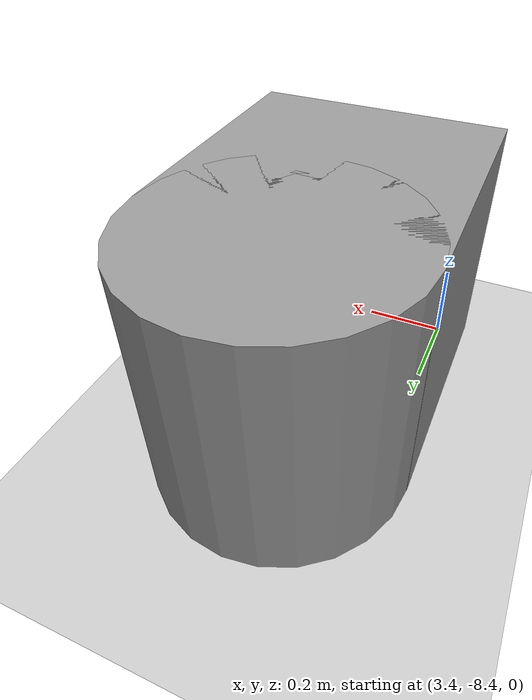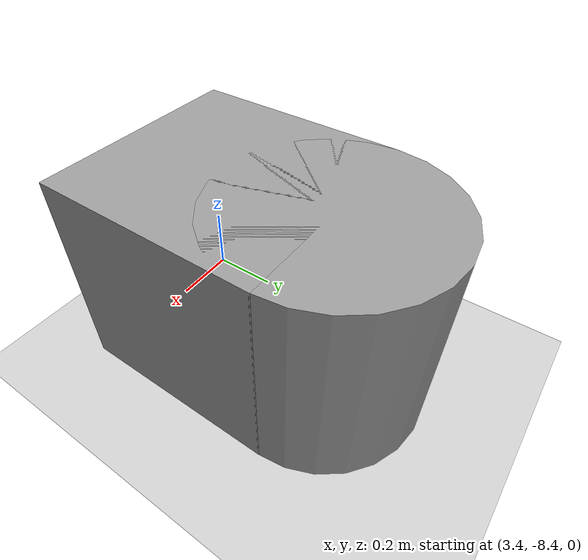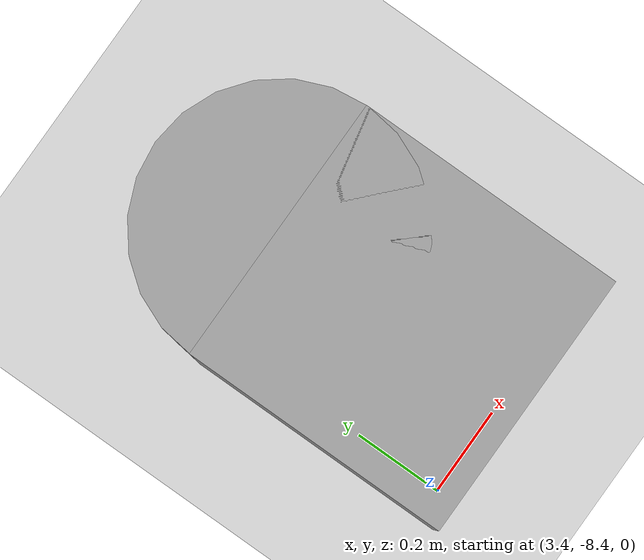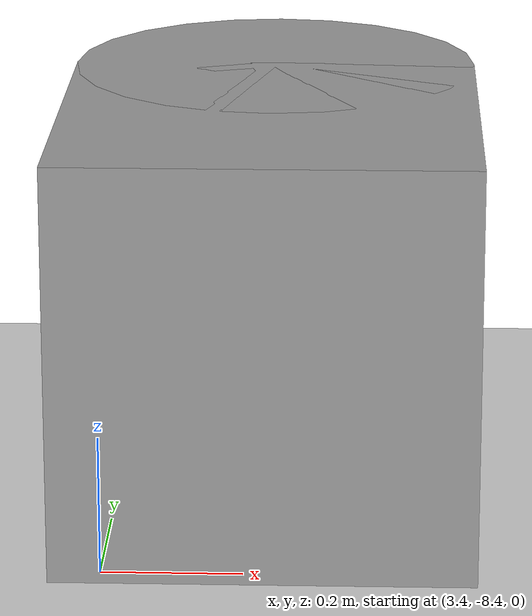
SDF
<sdf version="1.6">
 <world name="default">
  <model name="ground_plane">
   <static>1</static>
   <link name="link">
    <collision name="collision">
     <geometry><plane><normal>0 0 1</normal><size>100 100</size></plane></geometry>
     <surface>
      <contact><collide_bitmask>65535</collide_bitmask></contact>
      <friction><ode><mu>100</mu><mu2>50</mu2></ode></friction>
     </surface>
    </collision>
    <visual name="visual">
     <cast_shadows>0</cast_shadows>
     <geometry><plane><normal>0 0 1</normal><size>100 100</size></plane></geometry>
     <material>
      <script><uri>file://media/materials/scripts/gazebo.material</uri><name>Gazebo/Grey</name></script>
     </material>
    </visual>
   </link>
  </model>
  <model name="my_wc">
   <link name="link_0">
    <inertial>
     <mass>1</mass>
     <inertia><ixx>0.145833</ixx><ixy>0</ixy><ixz>0</ixz><iyy>0.145833</iyy><iyz>0</iyz><izz>0.125</izz></inertia>
    </inertial>
    <pose>-0.099947 0.388834 0 0 -0 0</pose>
    <visual name="visual">
     <pose>0 0 0.3 0 -0 0</pose>
     <geometry><cylinder><radius>0.3</radius><length>0.6</length></cylinder></geometry>
     <material>
      <lighting>1</lighting>
      <script><uri>file://media/materials/scripts/gazebo.material</uri><name>Gazebo/Grey</name></script>
      <shader type="pixel"><normal_map>__default__</normal_map></shader>
      <ambient>0.9 0.9 0.9 1</ambient>
      <diffuse>0.9 0.9 0.9 1</diffuse>
      <specular>0.01 0.01 0.01 1</specular>
      <emissive>0 0 0 1</emissive>
     </material>
    </visual>
    <collision name="collision">
     <pose>0 0 0.3 0 -0 0</pose>
     <geometry><cylinder><radius>0.3</radius><length>0.6</length></cylinder></geometry>
     <surface>
      <friction>
       <ode><mu>1</mu><mu2>1</mu2><fdir1>0 0 0</fdir1><slip1>0</slip1><slip2>0</slip2></ode>
       <torsional>
        <coefficient>1</coefficient>
        <patch_radius>0</patch_radius>
        <surface_radius>0</surface_radius>
        <use_patch_radius>1</use_patch_radius>
        <ode><slip>0</slip></ode>
       </torsional>
      </friction>
      <bounce><restitution_coefficient>0</restitution_coefficient><threshold>1e+06</threshold></bounce>
      <contact>
       <collide_without_contact>0</collide_without_contact>
       <collide_without_contact_bitmask>1</collide_without_contact_bitmask>
       <collide_bitmask>1</collide_bitmask>
       <ode>
        <soft_cfm>0</soft_cfm>
        <soft_erp>0.2</soft_erp>
        <kp>1e+13</kp>
        <kd>1</kd>
        <max_vel>0.01</max_vel>
        <min_depth>0</min_depth>
       </ode>
       <bullet>
        <split_impulse>1</split_impulse>
        <split_impulse_penetration_threshold>-0.01</split_impulse_penetration_threshold>
        <soft_cfm>0</soft_cfm>
        <soft_erp>0.2</soft_erp>
        <kp>1e+13</kp>
        <kd>1</kd>
       </bullet>
      </contact>
     </surface>
    </collision>
   </link>
   <link name="link_2">
    <inertial>
     <mass>1</mass>
     <inertia>
      <ixx>0.166667</ixx>
      <ixy>0</ixy>
      <ixz>0</ixz>
      <iyy>0.166667</iyy>
      <iyz>0</iyz>
      <izz>0.166667</izz>
     </inertia>
    </inertial>
    <pose>-0.099981 0.092319 0 0 -0 0</pose>
    <visual name="visual">
     <pose>0 0 0.3 0 -0 0</pose>
     <geometry><box><size>0.6 0.6 0.6</size></box></geometry>
     <material>
      <lighting>1</lighting>
      <script><uri>file://media/materials/scripts/gazebo.material</uri><name>Gazebo/Grey</name></script>
      <shader type="pixel"><normal_map>__default__</normal_map></shader>
      <ambient>0.9 0.9 0.9 1</ambient>
      <diffuse>0.9 0.9 0.9 1</diffuse>
      <specular>0.01 0.01 0.01 1</specular>
      <emissive>0 0 0 1</emissive>
     </material>
    </visual>
    <collision name="collision">
     <pose>0 0 0.3 0 -0 0</pose>
     <geometry><box><size>0.6 0.6 0.6</size></box></geometry>
     <surface>
      <friction>
       <ode><mu>1</mu><mu2>1</mu2><fdir1>0 0 0</fdir1><slip1>0</slip1><slip2>0</slip2></ode>
       <torsional>
        <coefficient>1</coefficient>
        <patch_radius>0</patch_radius>
        <surface_radius>0</surface_radius>
        <use_patch_radius>1</use_patch_radius>
        <ode><slip>0</slip></ode>
       </torsional>
      </friction>
      <bounce><restitution_coefficient>0</restitution_coefficient><threshold>1e+06</threshold></bounce>
      <contact>
       <collide_without_contact>0</collide_without_contact>
       <collide_without_contact_bitmask>1</collide_without_contact_bitmask>
       <collide_bitmask>1</collide_bitmask>
       <ode>
        <soft_cfm>0</soft_cfm>
        <soft_erp>0.2</soft_erp>
        <kp>1e+13</kp>
        <kd>1</kd>
        <max_vel>0.01</max_vel>
        <min_depth>0</min_depth>
       </ode>
       <bullet>
        <split_impulse>1</split_impulse>
        <split_impulse_penetration_threshold>-0.01</split_impulse_penetration_threshold>
        <soft_cfm>0</soft_cfm>
        <soft_erp>0.2</soft_erp>
        <kp>1e+13</kp>
        <kd>1</kd>
       </bullet>
      </contact>
     </surface>
    </collision>
   </link>
   <static>0</static>
   <pose>3.72828 -8.23178 -1e-06 0 -0 0</pose>
  </model>
 </world>
</sdf>
